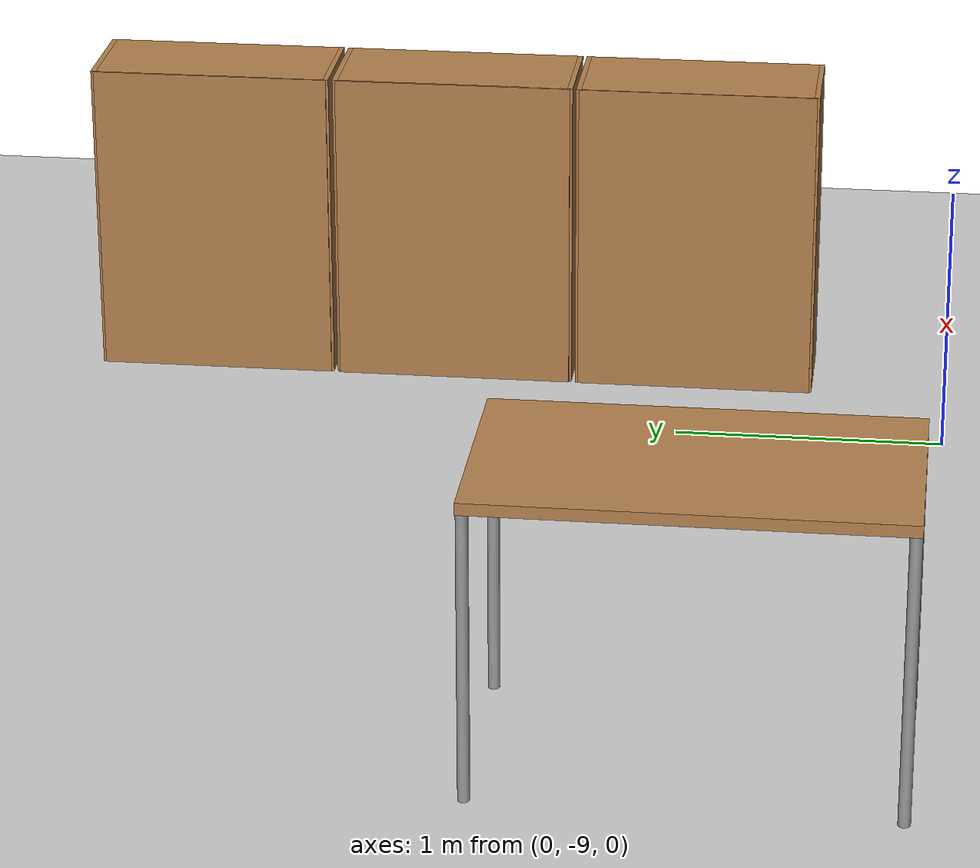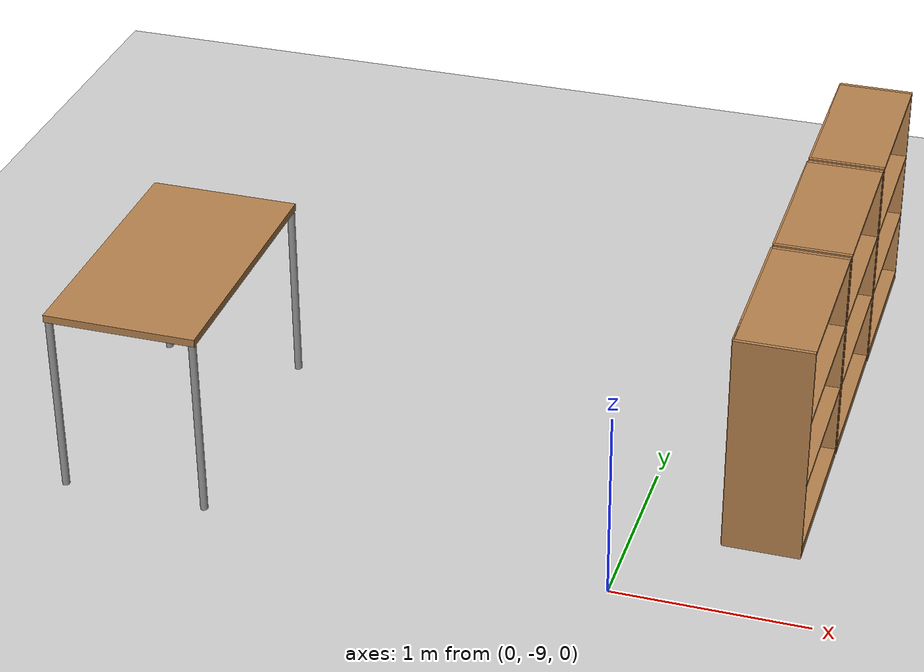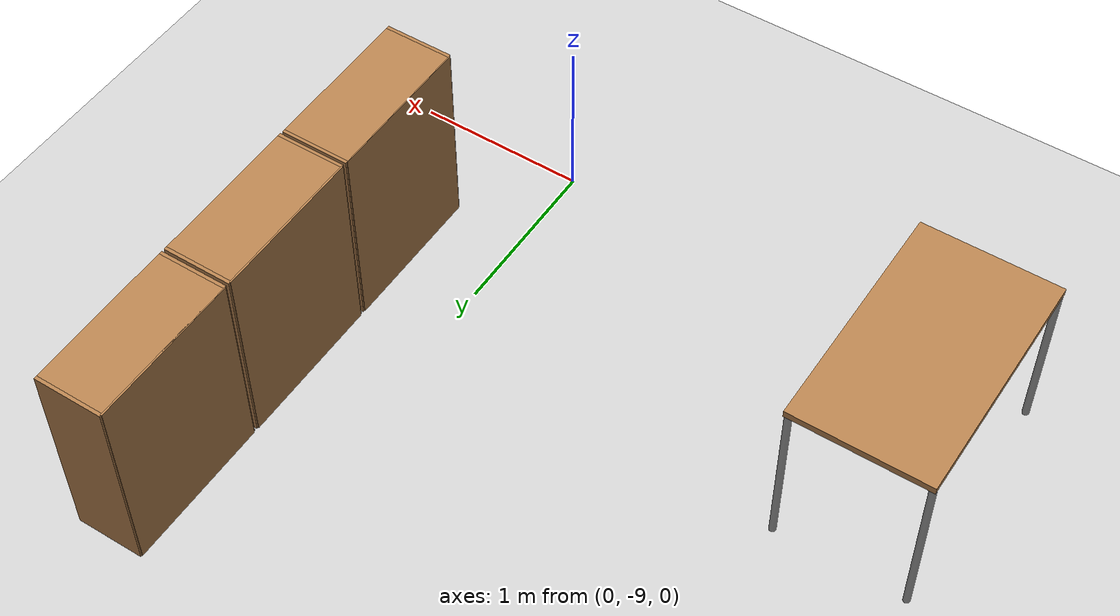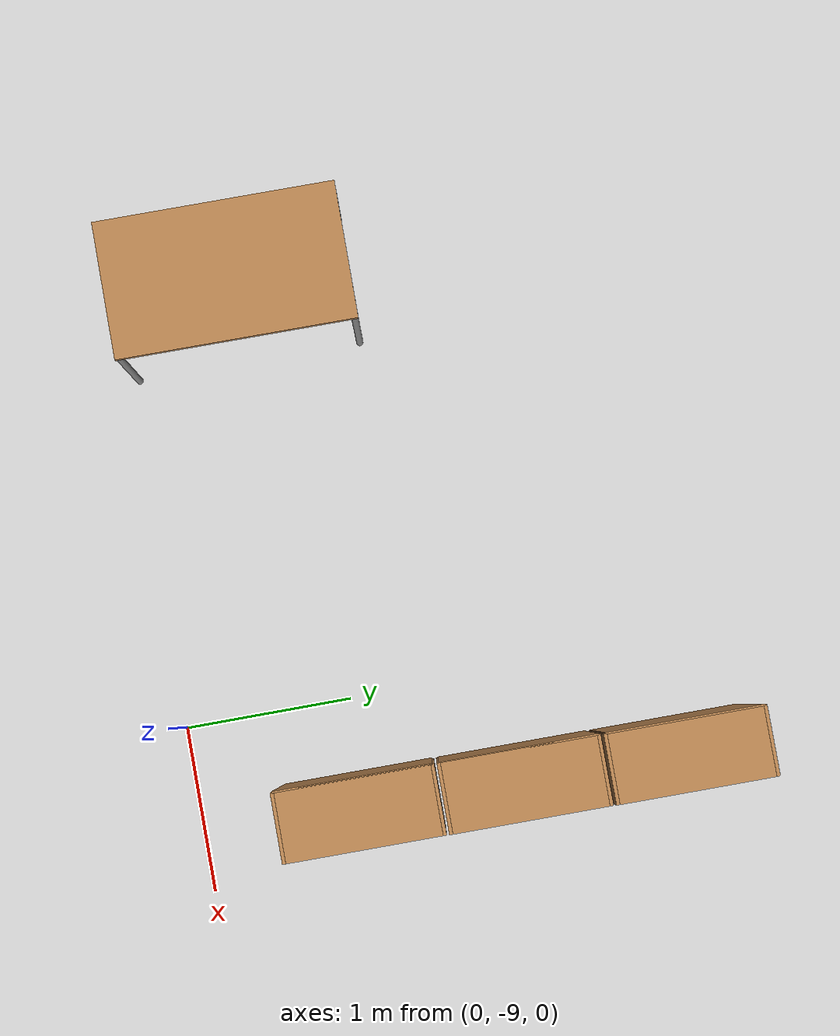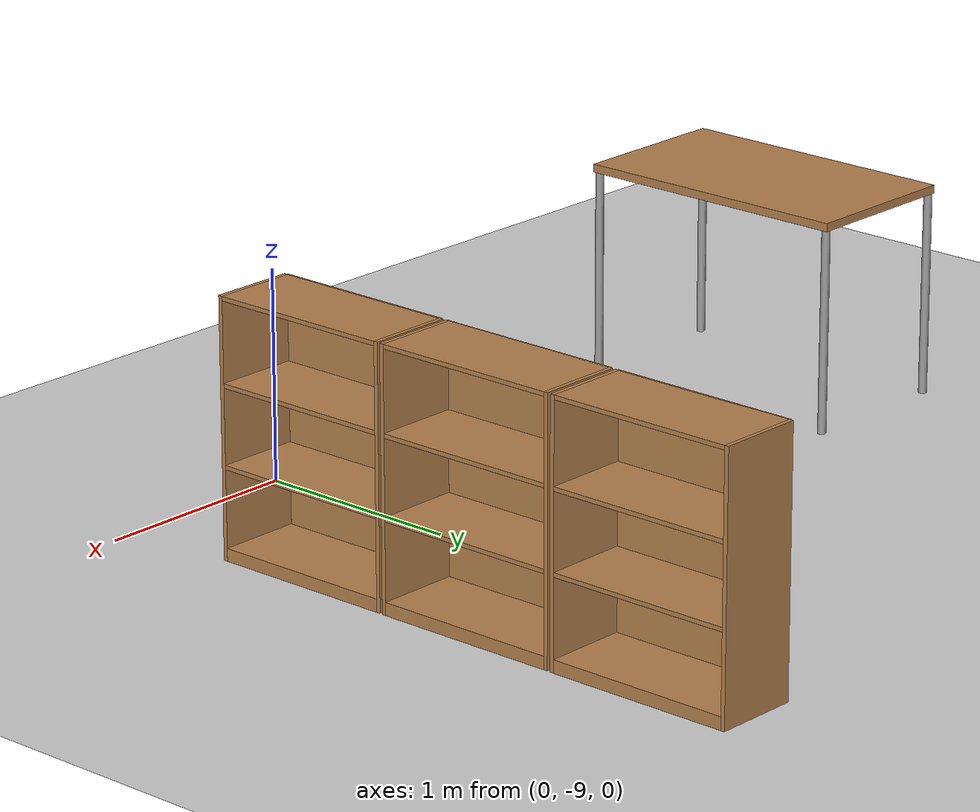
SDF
<sdf version="1.6">
 <world name="default">
  <model name="ground_plane">
   <static>1</static>
   <link name="link">
    <collision name="collision">
     <geometry><plane><normal>0 0 1</normal><size>100 100</size></plane></geometry>
     <surface><friction><ode><mu>100</mu><mu2>50</mu2></ode></friction></surface>
    </collision>
    <visual name="visual">
     <cast_shadows>0</cast_shadows>
     <geometry><plane><normal>0 0 1</normal><size>100 100</size></plane></geometry>
     <material>
      <script><uri>file://media/materials/scripts/gazebo.material</uri><name>Gazebo/Grey</name></script>
     </material>
    </visual>
   </link>
  </model>
  <model name="bookshelf_side2">
   <link name="link">
    <pose>0 0 0 0 -0 1.57268</pose>
    <inertial><mass>1</mass></inertial>
    <visual name="visual1">
     <pose>0 0.005 0.6 0 -0 0</pose>
     <geometry><box><size>0.9 0.01 1.2</size></box></geometry>
     <material>
      <script><uri>file://media/materials/scripts/gazebo.material</uri><name>Gazebo/Wood</name></script>
      <ambient>1 1 1 1</ambient>
      <diffuse>1 1 1 1</diffuse>
      <specular>0.2 0.2 0.2 1</specular>
      <emissive>0 0 0 1</emissive>
     </material>
    </visual>
    <visual name="visual2">
     <pose>0.45 -0.195 0.6 0 -0 0</pose>
     <geometry><box><size>0.02 0.4 1.2</size></box></geometry>
     <material>
      <script><uri>file://media/materials/scripts/gazebo.material</uri><name>Gazebo/Wood</name></script>
      <ambient>1 1 1 1</ambient>
      <diffuse>1 1 1 1</diffuse>
      <specular>0.2 0.2 0.2 1</specular>
      <emissive>0 0 0 1</emissive>
     </material>
    </visual>
    <visual name="visual4">
     <pose>0 -0.195 0.03 0 -0 0</pose>
     <geometry><box><size>0.88 0.4 0.06</size></box></geometry>
     <material>
      <script><uri>file://media/materials/scripts/gazebo.material</uri><name>Gazebo/Wood</name></script>
      <ambient>1 1 1 1</ambient>
      <diffuse>1 1 1 1</diffuse>
      <specular>0.2 0.2 0.2 1</specular>
      <emissive>0 0 0 1</emissive>
     </material>
    </visual>
    <visual name="visual3">
     <pose>-0.45 -0.195 0.6 0 -0 0</pose>
     <geometry><box><size>0.02 0.4 1.2</size></box></geometry>
     <material>
      <script><uri>file://media/materials/scripts/gazebo.material</uri><name>Gazebo/Wood</name></script>
      <ambient>1 1 1 1</ambient>
      <diffuse>1 1 1 1</diffuse>
      <specular>0.2 0.2 0.2 1</specular>
      <emissive>0 0 0 1</emissive>
     </material>
    </visual>
    <visual name="visual5">
     <pose>0 -0.195 1.19 0 -0 0</pose>
     <geometry><box><size>0.88 0.4 0.02</size></box></geometry>
     <material>
      <script><uri>file://media/materials/scripts/gazebo.material</uri><name>Gazebo/Wood</name></script>
      <ambient>1 1 1 1</ambient>
      <diffuse>1 1 1 1</diffuse>
      <specular>0.2 0.2 0.2 1</specular>
      <emissive>0 0 0 1</emissive>
     </material>
    </visual>
    <visual name="visual6">
     <pose>0 -0.195 0.43 0 -0 0</pose>
     <geometry><box><size>0.88 0.4 0.02</size></box></geometry>
     <material>
      <script><uri>file://media/materials/scripts/gazebo.material</uri><name>Gazebo/Wood</name></script>
      <ambient>1 1 1 1</ambient>
      <diffuse>1 1 1 1</diffuse>
      <specular>0.2 0.2 0.2 1</specular>
      <emissive>0 0 0 1</emissive>
     </material>
    </visual>
    <visual name="visual7">
     <pose>0 -0.195 0.8 0 -0 0</pose>
     <geometry><box><size>0.88 0.4 0.02</size></box></geometry>
     <material>
      <script><uri>file://media/materials/scripts/gazebo.material</uri><name>Gazebo/Wood</name></script>
      <ambient>1 1 1 1</ambient>
      <diffuse>1 1 1 1</diffuse>
      <specular>0.2 0.2 0.2 1</specular>
      <emissive>0 0 0 1</emissive>
     </material>
    </visual>
    <collision name="right_side">
     <pose>-0.45 -0.195 0.6 0 -0 0</pose>
     <geometry><box><size>0.02 0.4 1.2</size></box></geometry>
     <surface>
      <friction>
       <ode><mu>1</mu><mu2>1</mu2><fdir1>0 0 0</fdir1><slip1>0</slip1><slip2>0</slip2></ode>
       <torsional>
        <coefficient>1</coefficient>
        <patch_radius>0</patch_radius>
        <surface_radius>0</surface_radius>
        <use_patch_radius>1</use_patch_radius>
        <ode><slip>0</slip></ode>
       </torsional>
      </friction>
      <bounce><restitution_coefficient>0</restitution_coefficient><threshold>1e+06</threshold></bounce>
      <contact>
       <collide_without_contact>0</collide_without_contact>
       <collide_without_contact_bitmask>1</collide_without_contact_bitmask>
       <collide_bitmask>1</collide_bitmask>
       <ode>
        <soft_cfm>0</soft_cfm>
        <soft_erp>0.2</soft_erp>
        <kp>1e+13</kp>
        <kd>1</kd>
        <max_vel>0.01</max_vel>
        <min_depth>0</min_depth>
       </ode>
       <bullet>
        <split_impulse>1</split_impulse>
        <split_impulse_penetration_threshold>-0.01</split_impulse_penetration_threshold>
        <soft_cfm>0</soft_cfm>
        <soft_erp>0.2</soft_erp>
        <kp>1e+13</kp>
        <kd>1</kd>
       </bullet>
      </contact>
     </surface>
    </collision>
    <collision name="bottom">
     <pose>0 -0.195 0.03 0 -0 0</pose>
     <geometry><box><size>0.88 0.4 0.06</size></box></geometry>
     <surface>
      <friction>
       <ode><mu>1</mu><mu2>1</mu2><fdir1>0 0 0</fdir1><slip1>0</slip1><slip2>0</slip2></ode>
       <torsional>
        <coefficient>1</coefficient>
        <patch_radius>0</patch_radius>
        <surface_radius>0</surface_radius>
        <use_patch_radius>1</use_patch_radius>
        <ode><slip>0</slip></ode>
       </torsional>
      </friction>
      <bounce><restitution_coefficient>0</restitution_coefficient><threshold>1e+06</threshold></bounce>
      <contact>
       <collide_without_contact>0</collide_without_contact>
       <collide_without_contact_bitmask>1</collide_without_contact_bitmask>
       <collide_bitmask>1</collide_bitmask>
       <ode>
        <soft_cfm>0</soft_cfm>
        <soft_erp>0.2</soft_erp>
        <kp>1e+13</kp>
        <kd>1</kd>
        <max_vel>0.01</max_vel>
        <min_depth>0</min_depth>
       </ode>
       <bullet>
        <split_impulse>1</split_impulse>
        <split_impulse_penetration_threshold>-0.01</split_impulse_penetration_threshold>
        <soft_cfm>0</soft_cfm>
        <soft_erp>0.2</soft_erp>
        <kp>1e+13</kp>
        <kd>1</kd>
       </bullet>
      </contact>
     </surface>
    </collision>
    <collision name="back">
     <pose>0 0.005 0.6 0 -0 0</pose>
     <geometry><box><size>0.9 0.01 1.2</size></box></geometry>
     <surface>
      <friction>
       <ode><mu>1</mu><mu2>1</mu2><fdir1>0 0 0</fdir1><slip1>0</slip1><slip2>0</slip2></ode>
       <torsional>
        <coefficient>1</coefficient>
        <patch_radius>0</patch_radius>
        <surface_radius>0</surface_radius>
        <use_patch_radius>1</use_patch_radius>
        <ode><slip>0</slip></ode>
       </torsional>
      </friction>
      <bounce><restitution_coefficient>0</restitution_coefficient><threshold>1e+06</threshold></bounce>
      <contact>
       <collide_without_contact>0</collide_without_contact>
       <collide_without_contact_bitmask>1</collide_without_contact_bitmask>
       <collide_bitmask>1</collide_bitmask>
       <ode>
        <soft_cfm>0</soft_cfm>
        <soft_erp>0.2</soft_erp>
        <kp>1e+13</kp>
        <kd>1</kd>
        <max_vel>0.01</max_vel>
        <min_depth>0</min_depth>
       </ode>
       <bullet>
        <split_impulse>1</split_impulse>
        <split_impulse_penetration_threshold>-0.01</split_impulse_penetration_threshold>
        <soft_cfm>0</soft_cfm>
        <soft_erp>0.2</soft_erp>
        <kp>1e+13</kp>
        <kd>1</kd>
       </bullet>
      </contact>
     </surface>
    </collision>
    <collision name="left_side">
     <pose>0.45 -0.195 0.6 0 -0 0</pose>
     <geometry><box><size>0.02 0.4 1.2</size></box></geometry>
     <surface>
      <friction>
       <ode><mu>1</mu><mu2>1</mu2><fdir1>0 0 0</fdir1><slip1>0</slip1><slip2>0</slip2></ode>
       <torsional>
        <coefficient>1</coefficient>
        <patch_radius>0</patch_radius>
        <surface_radius>0</surface_radius>
        <use_patch_radius>1</use_patch_radius>
        <ode><slip>0</slip></ode>
       </torsional>
      </friction>
      <bounce><restitution_coefficient>0</restitution_coefficient><threshold>1e+06</threshold></bounce>
      <contact>
       <collide_without_contact>0</collide_without_contact>
       <collide_without_contact_bitmask>1</collide_without_contact_bitmask>
       <collide_bitmask>1</collide_bitmask>
       <ode>
        <soft_cfm>0</soft_cfm>
        <soft_erp>0.2</soft_erp>
        <kp>1e+13</kp>
        <kd>1</kd>
        <max_vel>0.01</max_vel>
        <min_depth>0</min_depth>
       </ode>
       <bullet>
        <split_impulse>1</split_impulse>
        <split_impulse_penetration_threshold>-0.01</split_impulse_penetration_threshold>
        <soft_cfm>0</soft_cfm>
        <soft_erp>0.2</soft_erp>
        <kp>1e+13</kp>
        <kd>1</kd>
       </bullet>
      </contact>
     </surface>
    </collision>
    <collision name="top">
     <pose>0 -0.195 1.19 0 -0 0</pose>
     <geometry><box><size>0.88 0.4 0.02</size></box></geometry>
     <surface>
      <friction>
       <ode><mu>1</mu><mu2>1</mu2><fdir1>0 0 0</fdir1><slip1>0</slip1><slip2>0</slip2></ode>
       <torsional>
        <coefficient>1</coefficient>
        <patch_radius>0</patch_radius>
        <surface_radius>0</surface_radius>
        <use_patch_radius>1</use_patch_radius>
        <ode><slip>0</slip></ode>
       </torsional>
      </friction>
      <bounce><restitution_coefficient>0</restitution_coefficient><threshold>1e+06</threshold></bounce>
      <contact>
       <collide_without_contact>0</collide_without_contact>
       <collide_without_contact_bitmask>1</collide_without_contact_bitmask>
       <collide_bitmask>1</collide_bitmask>
       <ode>
        <soft_cfm>0</soft_cfm>
        <soft_erp>0.2</soft_erp>
        <kp>1e+13</kp>
        <kd>1</kd>
        <max_vel>0.01</max_vel>
        <min_depth>0</min_depth>
       </ode>
       <bullet>
        <split_impulse>1</split_impulse>
        <split_impulse_penetration_threshold>-0.01</split_impulse_penetration_threshold>
        <soft_cfm>0</soft_cfm>
        <soft_erp>0.2</soft_erp>
        <kp>1e+13</kp>
        <kd>1</kd>
       </bullet>
      </contact>
     </surface>
    </collision>
    <collision name="low_shelf">
     <pose>0 -0.195 0.43 0 -0 0</pose>
     <geometry><box><size>0.88 0.4 0.02</size></box></geometry>
     <surface>
      <friction>
       <ode><mu>1</mu><mu2>1</mu2><fdir1>0 0 0</fdir1><slip1>0</slip1><slip2>0</slip2></ode>
       <torsional>
        <coefficient>1</coefficient>
        <patch_radius>0</patch_radius>
        <surface_radius>0</surface_radius>
        <use_patch_radius>1</use_patch_radius>
        <ode><slip>0</slip></ode>
       </torsional>
      </friction>
      <bounce><restitution_coefficient>0</restitution_coefficient><threshold>1e+06</threshold></bounce>
      <contact>
       <collide_without_contact>0</collide_without_contact>
       <collide_without_contact_bitmask>1</collide_without_contact_bitmask>
       <collide_bitmask>1</collide_bitmask>
       <ode>
        <soft_cfm>0</soft_cfm>
        <soft_erp>0.2</soft_erp>
        <kp>1e+13</kp>
        <kd>1</kd>
        <max_vel>0.01</max_vel>
        <min_depth>0</min_depth>
       </ode>
       <bullet>
        <split_impulse>1</split_impulse>
        <split_impulse_penetration_threshold>-0.01</split_impulse_penetration_threshold>
        <soft_cfm>0</soft_cfm>
        <soft_erp>0.2</soft_erp>
        <kp>1e+13</kp>
        <kd>1</kd>
       </bullet>
      </contact>
     </surface>
    </collision>
    <collision name="high_shelf">
     <pose>0 -0.195 0.8 0 -0 0</pose>
     <geometry><box><size>0.88 0.4 0.02</size></box></geometry>
     <surface>
      <friction>
       <ode><mu>1</mu><mu2>1</mu2><fdir1>0 0 0</fdir1><slip1>0</slip1><slip2>0</slip2></ode>
       <torsional>
        <coefficient>1</coefficient>
        <patch_radius>0</patch_radius>
        <surface_radius>0</surface_radius>
        <use_patch_radius>1</use_patch_radius>
        <ode><slip>0</slip></ode>
       </torsional>
      </friction>
      <bounce><restitution_coefficient>0</restitution_coefficient><threshold>1e+06</threshold></bounce>
      <contact>
       <collide_without_contact>0</collide_without_contact>
       <collide_without_contact_bitmask>1</collide_without_contact_bitmask>
       <collide_bitmask>1</collide_bitmask>
       <ode>
        <soft_cfm>0</soft_cfm>
        <soft_erp>0.2</soft_erp>
        <kp>1e+13</kp>
        <kd>1</kd>
        <max_vel>0.01</max_vel>
        <min_depth>0</min_depth>
       </ode>
       <bullet>
        <split_impulse>1</split_impulse>
        <split_impulse_penetration_threshold>-0.01</split_impulse_penetration_threshold>
        <soft_cfm>0</soft_cfm>
        <soft_erp>0.2</soft_erp>
        <kp>1e+13</kp>
        <kd>1</kd>
       </bullet>
      </contact>
     </surface>
    </collision>
   </link>
   <static>1</static>
   <pose>0.44647 -8.02672 0 0 -0 0</pose>
  </model>
  <model name="bookshelf_side2_clone">
   <link name="link">
    <pose>0 0 0 0 -0 1.57268</pose>
    <inertial><mass>1</mass></inertial>
    <visual name="visual1">
     <pose>0 0.005 0.6 0 -0 0</pose>
     <geometry><box><size>0.9 0.01 1.2</size></box></geometry>
     <material>
      <script><uri>file://media/materials/scripts/gazebo.material</uri><name>Gazebo/Wood</name></script>
      <ambient>1 1 1 1</ambient>
      <diffuse>1 1 1 1</diffuse>
      <specular>0.2 0.2 0.2 1</specular>
      <emissive>0 0 0 1</emissive>
     </material>
    </visual>
    <visual name="visual2">
     <pose>0.45 -0.195 0.6 0 -0 0</pose>
     <geometry><box><size>0.02 0.4 1.2</size></box></geometry>
     <material>
      <script><uri>file://media/materials/scripts/gazebo.material</uri><name>Gazebo/Wood</name></script>
      <ambient>1 1 1 1</ambient>
      <diffuse>1 1 1 1</diffuse>
      <specular>0.2 0.2 0.2 1</specular>
      <emissive>0 0 0 1</emissive>
     </material>
    </visual>
    <visual name="visual4">
     <pose>0 -0.195 0.03 0 -0 0</pose>
     <geometry><box><size>0.88 0.4 0.06</size></box></geometry>
     <material>
      <script><uri>file://media/materials/scripts/gazebo.material</uri><name>Gazebo/Wood</name></script>
      <ambient>1 1 1 1</ambient>
      <diffuse>1 1 1 1</diffuse>
      <specular>0.2 0.2 0.2 1</specular>
      <emissive>0 0 0 1</emissive>
     </material>
    </visual>
    <visual name="visual3">
     <pose>-0.45 -0.195 0.6 0 -0 0</pose>
     <geometry><box><size>0.02 0.4 1.2</size></box></geometry>
     <material>
      <script><uri>file://media/materials/scripts/gazebo.material</uri><name>Gazebo/Wood</name></script>
      <ambient>1 1 1 1</ambient>
      <diffuse>1 1 1 1</diffuse>
      <specular>0.2 0.2 0.2 1</specular>
      <emissive>0 0 0 1</emissive>
     </material>
    </visual>
    <visual name="visual5">
     <pose>0 -0.195 1.19 0 -0 0</pose>
     <geometry><box><size>0.88 0.4 0.02</size></box></geometry>
     <material>
      <script><uri>file://media/materials/scripts/gazebo.material</uri><name>Gazebo/Wood</name></script>
      <ambient>1 1 1 1</ambient>
      <diffuse>1 1 1 1</diffuse>
      <specular>0.2 0.2 0.2 1</specular>
      <emissive>0 0 0 1</emissive>
     </material>
    </visual>
    <visual name="visual6">
     <pose>0 -0.195 0.43 0 -0 0</pose>
     <geometry><box><size>0.88 0.4 0.02</size></box></geometry>
     <material>
      <script><uri>file://media/materials/scripts/gazebo.material</uri><name>Gazebo/Wood</name></script>
      <ambient>1 1 1 1</ambient>
      <diffuse>1 1 1 1</diffuse>
      <specular>0.2 0.2 0.2 1</specular>
      <emissive>0 0 0 1</emissive>
     </material>
    </visual>
    <visual name="visual7">
     <pose>0 -0.195 0.8 0 -0 0</pose>
     <geometry><box><size>0.88 0.4 0.02</size></box></geometry>
     <material>
      <script><uri>file://media/materials/scripts/gazebo.material</uri><name>Gazebo/Wood</name></script>
      <ambient>1 1 1 1</ambient>
      <diffuse>1 1 1 1</diffuse>
      <specular>0.2 0.2 0.2 1</specular>
      <emissive>0 0 0 1</emissive>
     </material>
    </visual>
    <collision name="right_side">
     <pose>-0.45 -0.195 0.6 0 -0 0</pose>
     <geometry><box><size>0.02 0.4 1.2</size></box></geometry>
     <surface>
      <friction>
       <ode><mu>1</mu><mu2>1</mu2><fdir1>0 0 0</fdir1><slip1>0</slip1><slip2>0</slip2></ode>
       <torsional>
        <coefficient>1</coefficient>
        <patch_radius>0</patch_radius>
        <surface_radius>0</surface_radius>
        <use_patch_radius>1</use_patch_radius>
        <ode><slip>0</slip></ode>
       </torsional>
      </friction>
      <bounce><restitution_coefficient>0</restitution_coefficient><threshold>1e+06</threshold></bounce>
      <contact>
       <collide_without_contact>0</collide_without_contact>
       <collide_without_contact_bitmask>1</collide_without_contact_bitmask>
       <collide_bitmask>1</collide_bitmask>
       <ode>
        <soft_cfm>0</soft_cfm>
        <soft_erp>0.2</soft_erp>
        <kp>1e+13</kp>
        <kd>1</kd>
        <max_vel>0.01</max_vel>
        <min_depth>0</min_depth>
       </ode>
       <bullet>
        <split_impulse>1</split_impulse>
        <split_impulse_penetration_threshold>-0.01</split_impulse_penetration_threshold>
        <soft_cfm>0</soft_cfm>
        <soft_erp>0.2</soft_erp>
        <kp>1e+13</kp>
        <kd>1</kd>
       </bullet>
      </contact>
     </surface>
    </collision>
    <collision name="bottom">
     <pose>0 -0.195 0.03 0 -0 0</pose>
     <geometry><box><size>0.88 0.4 0.06</size></box></geometry>
     <surface>
      <friction>
       <ode><mu>1</mu><mu2>1</mu2><fdir1>0 0 0</fdir1><slip1>0</slip1><slip2>0</slip2></ode>
       <torsional>
        <coefficient>1</coefficient>
        <patch_radius>0</patch_radius>
        <surface_radius>0</surface_radius>
        <use_patch_radius>1</use_patch_radius>
        <ode><slip>0</slip></ode>
       </torsional>
      </friction>
      <bounce><restitution_coefficient>0</restitution_coefficient><threshold>1e+06</threshold></bounce>
      <contact>
       <collide_without_contact>0</collide_without_contact>
       <collide_without_contact_bitmask>1</collide_without_contact_bitmask>
       <collide_bitmask>1</collide_bitmask>
       <ode>
        <soft_cfm>0</soft_cfm>
        <soft_erp>0.2</soft_erp>
        <kp>1e+13</kp>
        <kd>1</kd>
        <max_vel>0.01</max_vel>
        <min_depth>0</min_depth>
       </ode>
       <bullet>
        <split_impulse>1</split_impulse>
        <split_impulse_penetration_threshold>-0.01</split_impulse_penetration_threshold>
        <soft_cfm>0</soft_cfm>
        <soft_erp>0.2</soft_erp>
        <kp>1e+13</kp>
        <kd>1</kd>
       </bullet>
      </contact>
     </surface>
    </collision>
    <collision name="back">
     <pose>0 0.005 0.6 0 -0 0</pose>
     <geometry><box><size>0.9 0.01 1.2</size></box></geometry>
     <surface>
      <friction>
       <ode><mu>1</mu><mu2>1</mu2><fdir1>0 0 0</fdir1><slip1>0</slip1><slip2>0</slip2></ode>
       <torsional>
        <coefficient>1</coefficient>
        <patch_radius>0</patch_radius>
        <surface_radius>0</surface_radius>
        <use_patch_radius>1</use_patch_radius>
        <ode><slip>0</slip></ode>
       </torsional>
      </friction>
      <bounce><restitution_coefficient>0</restitution_coefficient><threshold>1e+06</threshold></bounce>
      <contact>
       <collide_without_contact>0</collide_without_contact>
       <collide_without_contact_bitmask>1</collide_without_contact_bitmask>
       <collide_bitmask>1</collide_bitmask>
       <ode>
        <soft_cfm>0</soft_cfm>
        <soft_erp>0.2</soft_erp>
        <kp>1e+13</kp>
        <kd>1</kd>
        <max_vel>0.01</max_vel>
        <min_depth>0</min_depth>
       </ode>
       <bullet>
        <split_impulse>1</split_impulse>
        <split_impulse_penetration_threshold>-0.01</split_impulse_penetration_threshold>
        <soft_cfm>0</soft_cfm>
        <soft_erp>0.2</soft_erp>
        <kp>1e+13</kp>
        <kd>1</kd>
       </bullet>
      </contact>
     </surface>
    </collision>
    <collision name="left_side">
     <pose>0.45 -0.195 0.6 0 -0 0</pose>
     <geometry><box><size>0.02 0.4 1.2</size></box></geometry>
     <surface>
      <friction>
       <ode><mu>1</mu><mu2>1</mu2><fdir1>0 0 0</fdir1><slip1>0</slip1><slip2>0</slip2></ode>
       <torsional>
        <coefficient>1</coefficient>
        <patch_radius>0</patch_radius>
        <surface_radius>0</surface_radius>
        <use_patch_radius>1</use_patch_radius>
        <ode><slip>0</slip></ode>
       </torsional>
      </friction>
      <bounce><restitution_coefficient>0</restitution_coefficient><threshold>1e+06</threshold></bounce>
      <contact>
       <collide_without_contact>0</collide_without_contact>
       <collide_without_contact_bitmask>1</collide_without_contact_bitmask>
       <collide_bitmask>1</collide_bitmask>
       <ode>
        <soft_cfm>0</soft_cfm>
        <soft_erp>0.2</soft_erp>
        <kp>1e+13</kp>
        <kd>1</kd>
        <max_vel>0.01</max_vel>
        <min_depth>0</min_depth>
       </ode>
       <bullet>
        <split_impulse>1</split_impulse>
        <split_impulse_penetration_threshold>-0.01</split_impulse_penetration_threshold>
        <soft_cfm>0</soft_cfm>
        <soft_erp>0.2</soft_erp>
        <kp>1e+13</kp>
        <kd>1</kd>
       </bullet>
      </contact>
     </surface>
    </collision>
    <collision name="top">
     <pose>0 -0.195 1.19 0 -0 0</pose>
     <geometry><box><size>0.88 0.4 0.02</size></box></geometry>
     <surface>
      <friction>
       <ode><mu>1</mu><mu2>1</mu2><fdir1>0 0 0</fdir1><slip1>0</slip1><slip2>0</slip2></ode>
       <torsional>
        <coefficient>1</coefficient>
        <patch_radius>0</patch_radius>
        <surface_radius>0</surface_radius>
        <use_patch_radius>1</use_patch_radius>
        <ode><slip>0</slip></ode>
       </torsional>
      </friction>
      <bounce><restitution_coefficient>0</restitution_coefficient><threshold>1e+06</threshold></bounce>
      <contact>
       <collide_without_contact>0</collide_without_contact>
       <collide_without_contact_bitmask>1</collide_without_contact_bitmask>
       <collide_bitmask>1</collide_bitmask>
       <ode>
        <soft_cfm>0</soft_cfm>
        <soft_erp>0.2</soft_erp>
        <kp>1e+13</kp>
        <kd>1</kd>
        <max_vel>0.01</max_vel>
        <min_depth>0</min_depth>
       </ode>
       <bullet>
        <split_impulse>1</split_impulse>
        <split_impulse_penetration_threshold>-0.01</split_impulse_penetration_threshold>
        <soft_cfm>0</soft_cfm>
        <soft_erp>0.2</soft_erp>
        <kp>1e+13</kp>
        <kd>1</kd>
       </bullet>
      </contact>
     </surface>
    </collision>
    <collision name="low_shelf">
     <pose>0 -0.195 0.43 0 -0 0</pose>
     <geometry><box><size>0.88 0.4 0.02</size></box></geometry>
     <surface>
      <friction>
       <ode><mu>1</mu><mu2>1</mu2><fdir1>0 0 0</fdir1><slip1>0</slip1><slip2>0</slip2></ode>
       <torsional>
        <coefficient>1</coefficient>
        <patch_radius>0</patch_radius>
        <surface_radius>0</surface_radius>
        <use_patch_radius>1</use_patch_radius>
        <ode><slip>0</slip></ode>
       </torsional>
      </friction>
      <bounce><restitution_coefficient>0</restitution_coefficient><threshold>1e+06</threshold></bounce>
      <contact>
       <collide_without_contact>0</collide_without_contact>
       <collide_without_contact_bitmask>1</collide_without_contact_bitmask>
       <collide_bitmask>1</collide_bitmask>
       <ode>
        <soft_cfm>0</soft_cfm>
        <soft_erp>0.2</soft_erp>
        <kp>1e+13</kp>
        <kd>1</kd>
        <max_vel>0.01</max_vel>
        <min_depth>0</min_depth>
       </ode>
       <bullet>
        <split_impulse>1</split_impulse>
        <split_impulse_penetration_threshold>-0.01</split_impulse_penetration_threshold>
        <soft_cfm>0</soft_cfm>
        <soft_erp>0.2</soft_erp>
        <kp>1e+13</kp>
        <kd>1</kd>
       </bullet>
      </contact>
     </surface>
    </collision>
    <collision name="high_shelf">
     <pose>0 -0.195 0.8 0 -0 0</pose>
     <geometry><box><size>0.88 0.4 0.02</size></box></geometry>
     <surface>
      <friction>
       <ode><mu>1</mu><mu2>1</mu2><fdir1>0 0 0</fdir1><slip1>0</slip1><slip2>0</slip2></ode>
       <torsional>
        <coefficient>1</coefficient>
        <patch_radius>0</patch_radius>
        <surface_radius>0</surface_radius>
        <use_patch_radius>1</use_patch_radius>
        <ode><slip>0</slip></ode>
       </torsional>
      </friction>
      <bounce><restitution_coefficient>0</restitution_coefficient><threshold>1e+06</threshold></bounce>
      <contact>
       <collide_without_contact>0</collide_without_contact>
       <collide_without_contact_bitmask>1</collide_without_contact_bitmask>
       <collide_bitmask>1</collide_bitmask>
       <ode>
        <soft_cfm>0</soft_cfm>
        <soft_erp>0.2</soft_erp>
        <kp>1e+13</kp>
        <kd>1</kd>
        <max_vel>0.01</max_vel>
        <min_depth>0</min_depth>
       </ode>
       <bullet>
        <split_impulse>1</split_impulse>
        <split_impulse_penetration_threshold>-0.01</split_impulse_penetration_threshold>
        <soft_cfm>0</soft_cfm>
        <soft_erp>0.2</soft_erp>
        <kp>1e+13</kp>
        <kd>1</kd>
       </bullet>
      </contact>
     </surface>
    </collision>
   </link>
   <static>1</static>
   <pose>0.44647 -7.09235 0 0 -0 0</pose>
  </model>
  <model name="bookshelf_side2_clone_0">
   <link name="link">
    <pose>0 0 0 0 -0 1.57268</pose>
    <inertial><mass>1</mass></inertial>
    <visual name="visual1">
     <pose>0 0.005 0.6 0 -0 0</pose>
     <geometry><box><size>0.9 0.01 1.2</size></box></geometry>
     <material>
      <script><uri>file://media/materials/scripts/gazebo.material</uri><name>Gazebo/Wood</name></script>
      <ambient>1 1 1 1</ambient>
      <diffuse>1 1 1 1</diffuse>
      <specular>0.2 0.2 0.2 1</specular>
      <emissive>0 0 0 1</emissive>
     </material>
    </visual>
    <visual name="visual2">
     <pose>0.45 -0.195 0.6 0 -0 0</pose>
     <geometry><box><size>0.02 0.4 1.2</size></box></geometry>
     <material>
      <script><uri>file://media/materials/scripts/gazebo.material</uri><name>Gazebo/Wood</name></script>
      <ambient>1 1 1 1</ambient>
      <diffuse>1 1 1 1</diffuse>
      <specular>0.2 0.2 0.2 1</specular>
      <emissive>0 0 0 1</emissive>
     </material>
    </visual>
    <visual name="visual4">
     <pose>0 -0.195 0.03 0 -0 0</pose>
     <geometry><box><size>0.88 0.4 0.06</size></box></geometry>
     <material>
      <script><uri>file://media/materials/scripts/gazebo.material</uri><name>Gazebo/Wood</name></script>
      <ambient>1 1 1 1</ambient>
      <diffuse>1 1 1 1</diffuse>
      <specular>0.2 0.2 0.2 1</specular>
      <emissive>0 0 0 1</emissive>
     </material>
    </visual>
    <visual name="visual3">
     <pose>-0.45 -0.195 0.6 0 -0 0</pose>
     <geometry><box><size>0.02 0.4 1.2</size></box></geometry>
     <material>
      <script><uri>file://media/materials/scripts/gazebo.material</uri><name>Gazebo/Wood</name></script>
      <ambient>1 1 1 1</ambient>
      <diffuse>1 1 1 1</diffuse>
      <specular>0.2 0.2 0.2 1</specular>
      <emissive>0 0 0 1</emissive>
     </material>
    </visual>
    <visual name="visual5">
     <pose>0 -0.195 1.19 0 -0 0</pose>
     <geometry><box><size>0.88 0.4 0.02</size></box></geometry>
     <material>
      <script><uri>file://media/materials/scripts/gazebo.material</uri><name>Gazebo/Wood</name></script>
      <ambient>1 1 1 1</ambient>
      <diffuse>1 1 1 1</diffuse>
      <specular>0.2 0.2 0.2 1</specular>
      <emissive>0 0 0 1</emissive>
     </material>
    </visual>
    <visual name="visual6">
     <pose>0 -0.195 0.43 0 -0 0</pose>
     <geometry><box><size>0.88 0.4 0.02</size></box></geometry>
     <material>
      <script><uri>file://media/materials/scripts/gazebo.material</uri><name>Gazebo/Wood</name></script>
      <ambient>1 1 1 1</ambient>
      <diffuse>1 1 1 1</diffuse>
      <specular>0.2 0.2 0.2 1</specular>
      <emissive>0 0 0 1</emissive>
     </material>
    </visual>
    <visual name="visual7">
     <pose>0 -0.195 0.8 0 -0 0</pose>
     <geometry><box><size>0.88 0.4 0.02</size></box></geometry>
     <material>
      <script><uri>file://media/materials/scripts/gazebo.material</uri><name>Gazebo/Wood</name></script>
      <ambient>1 1 1 1</ambient>
      <diffuse>1 1 1 1</diffuse>
      <specular>0.2 0.2 0.2 1</specular>
      <emissive>0 0 0 1</emissive>
     </material>
    </visual>
    <collision name="right_side">
     <pose>-0.45 -0.195 0.6 0 -0 0</pose>
     <geometry><box><size>0.02 0.4 1.2</size></box></geometry>
     <surface>
      <friction>
       <ode><mu>1</mu><mu2>1</mu2><fdir1>0 0 0</fdir1><slip1>0</slip1><slip2>0</slip2></ode>
       <torsional>
        <coefficient>1</coefficient>
        <patch_radius>0</patch_radius>
        <surface_radius>0</surface_radius>
        <use_patch_radius>1</use_patch_radius>
        <ode><slip>0</slip></ode>
       </torsional>
      </friction>
      <bounce><restitution_coefficient>0</restitution_coefficient><threshold>1e+06</threshold></bounce>
      <contact>
       <collide_without_contact>0</collide_without_contact>
       <collide_without_contact_bitmask>1</collide_without_contact_bitmask>
       <collide_bitmask>1</collide_bitmask>
       <ode>
        <soft_cfm>0</soft_cfm>
        <soft_erp>0.2</soft_erp>
        <kp>1e+13</kp>
        <kd>1</kd>
        <max_vel>0.01</max_vel>
        <min_depth>0</min_depth>
       </ode>
       <bullet>
        <split_impulse>1</split_impulse>
        <split_impulse_penetration_threshold>-0.01</split_impulse_penetration_threshold>
        <soft_cfm>0</soft_cfm>
        <soft_erp>0.2</soft_erp>
        <kp>1e+13</kp>
        <kd>1</kd>
       </bullet>
      </contact>
     </surface>
    </collision>
    <collision name="bottom">
     <pose>0 -0.195 0.03 0 -0 0</pose>
     <geometry><box><size>0.88 0.4 0.06</size></box></geometry>
     <surface>
      <friction>
       <ode><mu>1</mu><mu2>1</mu2><fdir1>0 0 0</fdir1><slip1>0</slip1><slip2>0</slip2></ode>
       <torsional>
        <coefficient>1</coefficient>
        <patch_radius>0</patch_radius>
        <surface_radius>0</surface_radius>
        <use_patch_radius>1</use_patch_radius>
        <ode><slip>0</slip></ode>
       </torsional>
      </friction>
      <bounce><restitution_coefficient>0</restitution_coefficient><threshold>1e+06</threshold></bounce>
      <contact>
       <collide_without_contact>0</collide_without_contact>
       <collide_without_contact_bitmask>1</collide_without_contact_bitmask>
       <collide_bitmask>1</collide_bitmask>
       <ode>
        <soft_cfm>0</soft_cfm>
        <soft_erp>0.2</soft_erp>
        <kp>1e+13</kp>
        <kd>1</kd>
        <max_vel>0.01</max_vel>
        <min_depth>0</min_depth>
       </ode>
       <bullet>
        <split_impulse>1</split_impulse>
        <split_impulse_penetration_threshold>-0.01</split_impulse_penetration_threshold>
        <soft_cfm>0</soft_cfm>
        <soft_erp>0.2</soft_erp>
        <kp>1e+13</kp>
        <kd>1</kd>
       </bullet>
      </contact>
     </surface>
    </collision>
    <collision name="back">
     <pose>0 0.005 0.6 0 -0 0</pose>
     <geometry><box><size>0.9 0.01 1.2</size></box></geometry>
     <surface>
      <friction>
       <ode><mu>1</mu><mu2>1</mu2><fdir1>0 0 0</fdir1><slip1>0</slip1><slip2>0</slip2></ode>
       <torsional>
        <coefficient>1</coefficient>
        <patch_radius>0</patch_radius>
        <surface_radius>0</surface_radius>
        <use_patch_radius>1</use_patch_radius>
        <ode><slip>0</slip></ode>
       </torsional>
      </friction>
      <bounce><restitution_coefficient>0</restitution_coefficient><threshold>1e+06</threshold></bounce>
      <contact>
       <collide_without_contact>0</collide_without_contact>
       <collide_without_contact_bitmask>1</collide_without_contact_bitmask>
       <collide_bitmask>1</collide_bitmask>
       <ode>
        <soft_cfm>0</soft_cfm>
        <soft_erp>0.2</soft_erp>
        <kp>1e+13</kp>
        <kd>1</kd>
        <max_vel>0.01</max_vel>
        <min_depth>0</min_depth>
       </ode>
       <bullet>
        <split_impulse>1</split_impulse>
        <split_impulse_penetration_threshold>-0.01</split_impulse_penetration_threshold>
        <soft_cfm>0</soft_cfm>
        <soft_erp>0.2</soft_erp>
        <kp>1e+13</kp>
        <kd>1</kd>
       </bullet>
      </contact>
     </surface>
    </collision>
    <collision name="left_side">
     <pose>0.45 -0.195 0.6 0 -0 0</pose>
     <geometry><box><size>0.02 0.4 1.2</size></box></geometry>
     <surface>
      <friction>
       <ode><mu>1</mu><mu2>1</mu2><fdir1>0 0 0</fdir1><slip1>0</slip1><slip2>0</slip2></ode>
       <torsional>
        <coefficient>1</coefficient>
        <patch_radius>0</patch_radius>
        <surface_radius>0</surface_radius>
        <use_patch_radius>1</use_patch_radius>
        <ode><slip>0</slip></ode>
       </torsional>
      </friction>
      <bounce><restitution_coefficient>0</restitution_coefficient><threshold>1e+06</threshold></bounce>
      <contact>
       <collide_without_contact>0</collide_without_contact>
       <collide_without_contact_bitmask>1</collide_without_contact_bitmask>
       <collide_bitmask>1</collide_bitmask>
       <ode>
        <soft_cfm>0</soft_cfm>
        <soft_erp>0.2</soft_erp>
        <kp>1e+13</kp>
        <kd>1</kd>
        <max_vel>0.01</max_vel>
        <min_depth>0</min_depth>
       </ode>
       <bullet>
        <split_impulse>1</split_impulse>
        <split_impulse_penetration_threshold>-0.01</split_impulse_penetration_threshold>
        <soft_cfm>0</soft_cfm>
        <soft_erp>0.2</soft_erp>
        <kp>1e+13</kp>
        <kd>1</kd>
       </bullet>
      </contact>
     </surface>
    </collision>
    <collision name="top">
     <pose>0 -0.195 1.19 0 -0 0</pose>
     <geometry><box><size>0.88 0.4 0.02</size></box></geometry>
     <surface>
      <friction>
       <ode><mu>1</mu><mu2>1</mu2><fdir1>0 0 0</fdir1><slip1>0</slip1><slip2>0</slip2></ode>
       <torsional>
        <coefficient>1</coefficient>
        <patch_radius>0</patch_radius>
        <surface_radius>0</surface_radius>
        <use_patch_radius>1</use_patch_radius>
        <ode><slip>0</slip></ode>
       </torsional>
      </friction>
      <bounce><restitution_coefficient>0</restitution_coefficient><threshold>1e+06</threshold></bounce>
      <contact>
       <collide_without_contact>0</collide_without_contact>
       <collide_without_contact_bitmask>1</collide_without_contact_bitmask>
       <collide_bitmask>1</collide_bitmask>
       <ode>
        <soft_cfm>0</soft_cfm>
        <soft_erp>0.2</soft_erp>
        <kp>1e+13</kp>
        <kd>1</kd>
        <max_vel>0.01</max_vel>
        <min_depth>0</min_depth>
       </ode>
       <bullet>
        <split_impulse>1</split_impulse>
        <split_impulse_penetration_threshold>-0.01</split_impulse_penetration_threshold>
        <soft_cfm>0</soft_cfm>
        <soft_erp>0.2</soft_erp>
        <kp>1e+13</kp>
        <kd>1</kd>
       </bullet>
      </contact>
     </surface>
    </collision>
    <collision name="low_shelf">
     <pose>0 -0.195 0.43 0 -0 0</pose>
     <geometry><box><size>0.88 0.4 0.02</size></box></geometry>
     <surface>
      <friction>
       <ode><mu>1</mu><mu2>1</mu2><fdir1>0 0 0</fdir1><slip1>0</slip1><slip2>0</slip2></ode>
       <torsional>
        <coefficient>1</coefficient>
        <patch_radius>0</patch_radius>
        <surface_radius>0</surface_radius>
        <use_patch_radius>1</use_patch_radius>
        <ode><slip>0</slip></ode>
       </torsional>
      </friction>
      <bounce><restitution_coefficient>0</restitution_coefficient><threshold>1e+06</threshold></bounce>
      <contact>
       <collide_without_contact>0</collide_without_contact>
       <collide_without_contact_bitmask>1</collide_without_contact_bitmask>
       <collide_bitmask>1</collide_bitmask>
       <ode>
        <soft_cfm>0</soft_cfm>
        <soft_erp>0.2</soft_erp>
        <kp>1e+13</kp>
        <kd>1</kd>
        <max_vel>0.01</max_vel>
        <min_depth>0</min_depth>
       </ode>
       <bullet>
        <split_impulse>1</split_impulse>
        <split_impulse_penetration_threshold>-0.01</split_impulse_penetration_threshold>
        <soft_cfm>0</soft_cfm>
        <soft_erp>0.2</soft_erp>
        <kp>1e+13</kp>
        <kd>1</kd>
       </bullet>
      </contact>
     </surface>
    </collision>
    <collision name="high_shelf">
     <pose>0 -0.195 0.8 0 -0 0</pose>
     <geometry><box><size>0.88 0.4 0.02</size></box></geometry>
     <surface>
      <friction>
       <ode><mu>1</mu><mu2>1</mu2><fdir1>0 0 0</fdir1><slip1>0</slip1><slip2>0</slip2></ode>
       <torsional>
        <coefficient>1</coefficient>
        <patch_radius>0</patch_radius>
        <surface_radius>0</surface_radius>
        <use_patch_radius>1</use_patch_radius>
        <ode><slip>0</slip></ode>
       </torsional>
      </friction>
      <bounce><restitution_coefficient>0</restitution_coefficient><threshold>1e+06</threshold></bounce>
      <contact>
       <collide_without_contact>0</collide_without_contact>
       <collide_without_contact_bitmask>1</collide_without_contact_bitmask>
       <collide_bitmask>1</collide_bitmask>
       <ode>
        <soft_cfm>0</soft_cfm>
        <soft_erp>0.2</soft_erp>
        <kp>1e+13</kp>
        <kd>1</kd>
        <max_vel>0.01</max_vel>
        <min_depth>0</min_depth>
       </ode>
       <bullet>
        <split_impulse>1</split_impulse>
        <split_impulse_penetration_threshold>-0.01</split_impulse_penetration_threshold>
        <soft_cfm>0</soft_cfm>
        <soft_erp>0.2</soft_erp>
        <kp>1e+13</kp>
        <kd>1</kd>
       </bullet>
      </contact>
     </surface>
    </collision>
   </link>
   <static>1</static>
   <pose>0.44647 -6.157 0 0 -0 0</pose>
  </model>
  <model name="table_vert_0_clone_clone_clone_0_clone_0_clone_2">
   <link name="link">
    <pose>0 0 0 0 0 -1.56614</pose>
    <inertial>
     <inertia><ixx>1</ixx><ixy>0</ixy><ixz>0</ixz><iyy>1</iyy><iyz>0</iyz><izz>1</izz></inertia>
     <mass>1</mass>
    </inertial>
    <visual name="visual1">
     <pose>0 0 1 0 -0 0</pose>
     <geometry><box><size>1.4 0.8 0.04</size></box></geometry>
     <material>
      <script><uri>file://media/materials/scripts/gazebo.material</uri><name>Gazebo/Wood</name></script>
      <ambient>1 1 1 1</ambient>
      <diffuse>1 1 1 1</diffuse>
      <specular>0.2 0.2 0.2 1</specular>
      <emissive>0 0 0 1</emissive>
     </material>
    </visual>
    <visual name="front_left_leg">
     <pose>0.68 0.38 0.5 0 -0 0</pose>
     <geometry><cylinder><radius>0.02</radius><length>1</length></cylinder></geometry>
     <material>
      <script><uri>file://media/materials/scripts/gazebo.material</uri><name>Gazebo/Grey</name></script>
      <ambient>0.3 0.3 0.3 1</ambient>
      <diffuse>0.7 0.7 0.7 1</diffuse>
      <specular>0.01 0.01 0.01 1</specular>
      <emissive>0 0 0 1</emissive>
     </material>
    </visual>
    <visual name="front_right_leg">
     <pose>0.68 -0.38 0.5 0 -0 0</pose>
     <geometry><cylinder><radius>0.02</radius><length>1</length></cylinder></geometry>
     <material>
      <script><uri>file://media/materials/scripts/gazebo.material</uri><name>Gazebo/Grey</name></script>
      <ambient>0.3 0.3 0.3 1</ambient>
      <diffuse>0.7 0.7 0.7 1</diffuse>
      <specular>0.01 0.01 0.01 1</specular>
      <emissive>0 0 0 1</emissive>
     </material>
    </visual>
    <visual name="back_right_leg">
     <pose>-0.68 -0.38 0.5 0 -0 0</pose>
     <geometry><cylinder><radius>0.02</radius><length>1</length></cylinder></geometry>
     <material>
      <script><uri>file://media/materials/scripts/gazebo.material</uri><name>Gazebo/Grey</name></script>
      <ambient>0.3 0.3 0.3 1</ambient>
      <diffuse>0.7 0.7 0.7 1</diffuse>
      <specular>0.01 0.01 0.01 1</specular>
      <emissive>0 0 0 1</emissive>
     </material>
    </visual>
    <visual name="back_left_leg">
     <pose>-0.68 0.38 0.5 0 -0 0</pose>
     <geometry><cylinder><radius>0.02</radius><length>1</length></cylinder></geometry>
     <material>
      <script><uri>file://media/materials/scripts/gazebo.material</uri><name>Gazebo/Grey</name></script>
      <ambient>0.3 0.3 0.3 1</ambient>
      <diffuse>0.7 0.7 0.7 1</diffuse>
      <specular>0.01 0.01 0.01 1</specular>
      <emissive>0 0 0 1</emissive>
     </material>
    </visual>
    <collision name="surface">
     <pose>0 0 1 0 -0 0</pose>
     <geometry><box><size>1.5 0.8 0.03</size></box></geometry>
     <surface>
      <friction>
       <ode><mu>0.6</mu><mu2>0.6</mu2><fdir1>0 0 0</fdir1><slip1>0</slip1><slip2>0</slip2></ode>
       <torsional>
        <coefficient>1</coefficient>
        <patch_radius>0</patch_radius>
        <surface_radius>0</surface_radius>
        <use_patch_radius>1</use_patch_radius>
        <ode><slip>0</slip></ode>
       </torsional>
      </friction>
      <bounce><restitution_coefficient>0</restitution_coefficient><threshold>1e+06</threshold></bounce>
      <contact>
       <collide_without_contact>0</collide_without_contact>
       <collide_without_contact_bitmask>1</collide_without_contact_bitmask>
       <collide_bitmask>1</collide_bitmask>
       <ode>
        <soft_cfm>0</soft_cfm>
        <soft_erp>0.2</soft_erp>
        <kp>1e+13</kp>
        <kd>1</kd>
        <max_vel>0.01</max_vel>
        <min_depth>0</min_depth>
       </ode>
       <bullet>
        <split_impulse>1</split_impulse>
        <split_impulse_penetration_threshold>-0.01</split_impulse_penetration_threshold>
        <soft_cfm>0</soft_cfm>
        <soft_erp>0.2</soft_erp>
        <kp>1e+13</kp>
        <kd>1</kd>
       </bullet>
      </contact>
     </surface>
    </collision>
    <collision name="front_left_leg">
     <pose>0.68 0.38 0.5 0 -0 0</pose>
     <geometry><cylinder><radius>0.02</radius><length>1</length></cylinder></geometry>
     <surface>
      <friction>
       <ode><mu>1</mu><mu2>1</mu2><fdir1>0 0 0</fdir1><slip1>0</slip1><slip2>0</slip2></ode>
       <torsional>
        <coefficient>1</coefficient>
        <patch_radius>0</patch_radius>
        <surface_radius>0</surface_radius>
        <use_patch_radius>1</use_patch_radius>
        <ode><slip>0</slip></ode>
       </torsional>
      </friction>
      <bounce><restitution_coefficient>0</restitution_coefficient><threshold>1e+06</threshold></bounce>
      <contact>
       <collide_without_contact>0</collide_without_contact>
       <collide_without_contact_bitmask>1</collide_without_contact_bitmask>
       <collide_bitmask>1</collide_bitmask>
       <ode>
        <soft_cfm>0</soft_cfm>
        <soft_erp>0.2</soft_erp>
        <kp>1e+13</kp>
        <kd>1</kd>
        <max_vel>0.01</max_vel>
        <min_depth>0</min_depth>
       </ode>
       <bullet>
        <split_impulse>1</split_impulse>
        <split_impulse_penetration_threshold>-0.01</split_impulse_penetration_threshold>
        <soft_cfm>0</soft_cfm>
        <soft_erp>0.2</soft_erp>
        <kp>1e+13</kp>
        <kd>1</kd>
       </bullet>
      </contact>
     </surface>
    </collision>
    <collision name="front_right_leg">
     <pose>0.68 -0.38 0.5 0 -0 0</pose>
     <geometry><cylinder><radius>0.02</radius><length>1</length></cylinder></geometry>
     <surface>
      <friction>
       <ode><mu>1</mu><mu2>1</mu2><fdir1>0 0 0</fdir1><slip1>0</slip1><slip2>0</slip2></ode>
       <torsional>
        <coefficient>1</coefficient>
        <patch_radius>0</patch_radius>
        <surface_radius>0</surface_radius>
        <use_patch_radius>1</use_patch_radius>
        <ode><slip>0</slip></ode>
       </torsional>
      </friction>
      <bounce><restitution_coefficient>0</restitution_coefficient><threshold>1e+06</threshold></bounce>
      <contact>
       <collide_without_contact>0</collide_without_contact>
       <collide_without_contact_bitmask>1</collide_without_contact_bitmask>
       <collide_bitmask>1</collide_bitmask>
       <ode>
        <soft_cfm>0</soft_cfm>
        <soft_erp>0.2</soft_erp>
        <kp>1e+13</kp>
        <kd>1</kd>
        <max_vel>0.01</max_vel>
        <min_depth>0</min_depth>
       </ode>
       <bullet>
        <split_impulse>1</split_impulse>
        <split_impulse_penetration_threshold>-0.01</split_impulse_penetration_threshold>
        <soft_cfm>0</soft_cfm>
        <soft_erp>0.2</soft_erp>
        <kp>1e+13</kp>
        <kd>1</kd>
       </bullet>
      </contact>
     </surface>
    </collision>
    <collision name="back_right_leg">
     <pose>-0.68 -0.38 0.5 0 -0 0</pose>
     <geometry><cylinder><radius>0.02</radius><length>1</length></cylinder></geometry>
     <surface>
      <friction>
       <ode><mu>1</mu><mu2>1</mu2><fdir1>0 0 0</fdir1><slip1>0</slip1><slip2>0</slip2></ode>
       <torsional>
        <coefficient>1</coefficient>
        <patch_radius>0</patch_radius>
        <surface_radius>0</surface_radius>
        <use_patch_radius>1</use_patch_radius>
        <ode><slip>0</slip></ode>
       </torsional>
      </friction>
      <bounce><restitution_coefficient>0</restitution_coefficient><threshold>1e+06</threshold></bounce>
      <contact>
       <collide_without_contact>0</collide_without_contact>
       <collide_without_contact_bitmask>1</collide_without_contact_bitmask>
       <collide_bitmask>1</collide_bitmask>
       <ode>
        <soft_cfm>0</soft_cfm>
        <soft_erp>0.2</soft_erp>
        <kp>1e+13</kp>
        <kd>1</kd>
        <max_vel>0.01</max_vel>
        <min_depth>0</min_depth>
       </ode>
       <bullet>
        <split_impulse>1</split_impulse>
        <split_impulse_penetration_threshold>-0.01</split_impulse_penetration_threshold>
        <soft_cfm>0</soft_cfm>
        <soft_erp>0.2</soft_erp>
        <kp>1e+13</kp>
        <kd>1</kd>
       </bullet>
      </contact>
     </surface>
    </collision>
    <collision name="back_left_leg">
     <pose>-0.68 0.38 0.5 0 -0 0</pose>
     <geometry><cylinder><radius>0.02</radius><length>1</length></cylinder></geometry>
     <surface>
      <friction>
       <ode><mu>1</mu><mu2>1</mu2><fdir1>0 0 0</fdir1><slip1>0</slip1><slip2>0</slip2></ode>
       <torsional>
        <coefficient>1</coefficient>
        <patch_radius>0</patch_radius>
        <surface_radius>0</surface_radius>
        <use_patch_radius>1</use_patch_radius>
        <ode><slip>0</slip></ode>
       </torsional>
      </friction>
      <bounce><restitution_coefficient>0</restitution_coefficient><threshold>1e+06</threshold></bounce>
      <contact>
       <collide_without_contact>0</collide_without_contact>
       <collide_without_contact_bitmask>1</collide_without_contact_bitmask>
       <collide_bitmask>1</collide_bitmask>
       <ode>
        <soft_cfm>0</soft_cfm>
        <soft_erp>0.2</soft_erp>
        <kp>1e+13</kp>
        <kd>1</kd>
        <max_vel>0.01</max_vel>
        <min_depth>0</min_depth>
       </ode>
       <bullet>
        <split_impulse>1</split_impulse>
        <split_impulse_penetration_threshold>-0.01</split_impulse_penetration_threshold>
        <soft_cfm>0</soft_cfm>
        <soft_erp>0.2</soft_erp>
        <kp>1e+13</kp>
        <kd>1</kd>
       </bullet>
      </contact>
     </surface>
    </collision>
   </link>
   <static>0</static>
   <pose>-2.50805 -8.25192 -2.5e-05 0 1e-06 -0.004657</pose>
  </model>
 </world>
</sdf>
